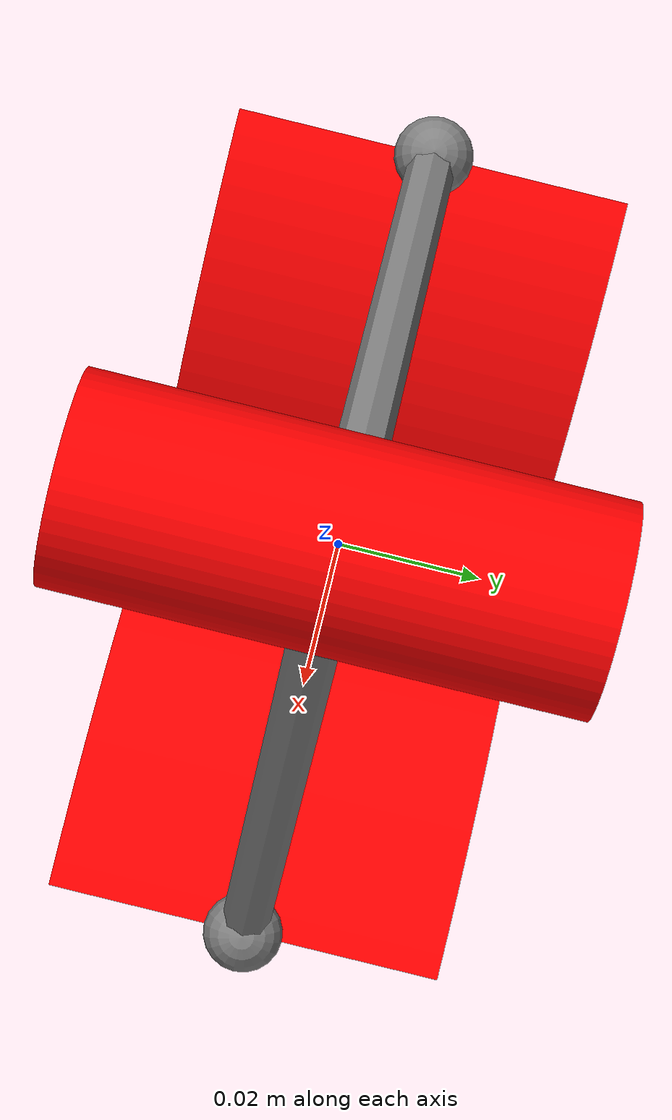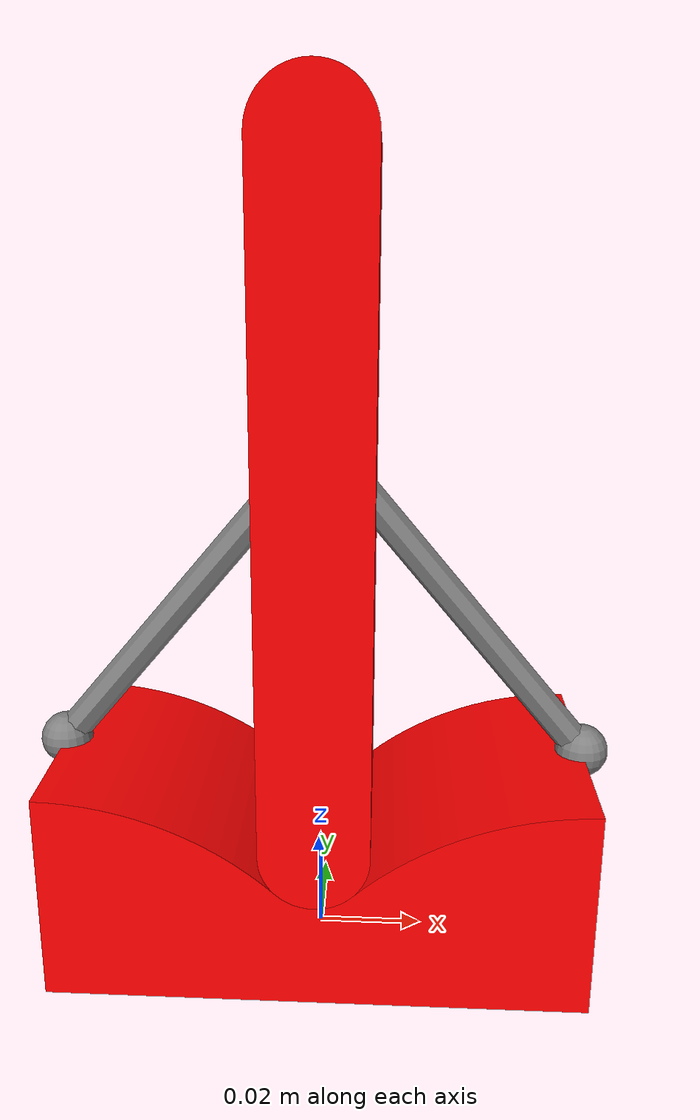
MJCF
<!-- author RinYoshida -->
<!-- email tororo1219@gmail.com -->

<mujoco model="inverted_pendulum">
  <option gravity="0 0 -9.81" integrator="RK4" timestep="0.1"/>

  <asset>
    <mesh name="stage_mesh" file="../meshes/stage.stl" scale="0.001 0.001 0.001"/>
    <mesh name="pole_mesh" file="../meshes/pole.stl" scale="0.001 0.001 0.001"/>
  </asset>

  <worldbody>
    <body name="stage" pos="0 0 0">
      <geom type="mesh" mesh="stage_mesh" rgba="1 0 0 1"/>
      <site name="muscle_origin_site" pos="0.05 0 0.04"/>
      <site name="muscle_origin_site_1" pos="-0.05 0 0.04"/>
      <body name="pole" pos="0 0 0">
	<joint name="hinge1" type="hinge" pos="0 0 0.03" axis="0 1 0" range="-45 45" limited="true" damping="1.0"/>
	<inertial pos="0 0 0" mass="1.0" diaginertia="0.1 0.1 0.1"/>
	<geom type="mesh" mesh="pole_mesh" rgba="1 0 0 1"/>
	<site name="muscle_insert_site" pos="0 0 0.10"/>
	<site name="muscle_insert_site_1" pos="0 0 0.10"/>
      </body>
    </body>
  </worldbody>

  <tendon>
    <spatial name="muscle_tendon">
      <site site="muscle_origin_site"/>
      <site site="muscle_insert_site"/>
    </spatial>
    <spatial name="muscle_tendon_1">
      <site site="muscle_origin_site_1"/>
      <site site="muscle_insert_site_1"/>
    </spatial>
  </tendon>

  <actuator>
    <motor joint="hinge1" ctrlrange="-45 45" gear="1"/>
    <muscle name = "muscle1" tendon = "muscle_tendon" ctrlrange="0 1"/>
    <muscle name = "muscle2" tendon = "muscle_tendon_1" ctrlrange="0 1"/>
  </actuator>

</mujoco>
